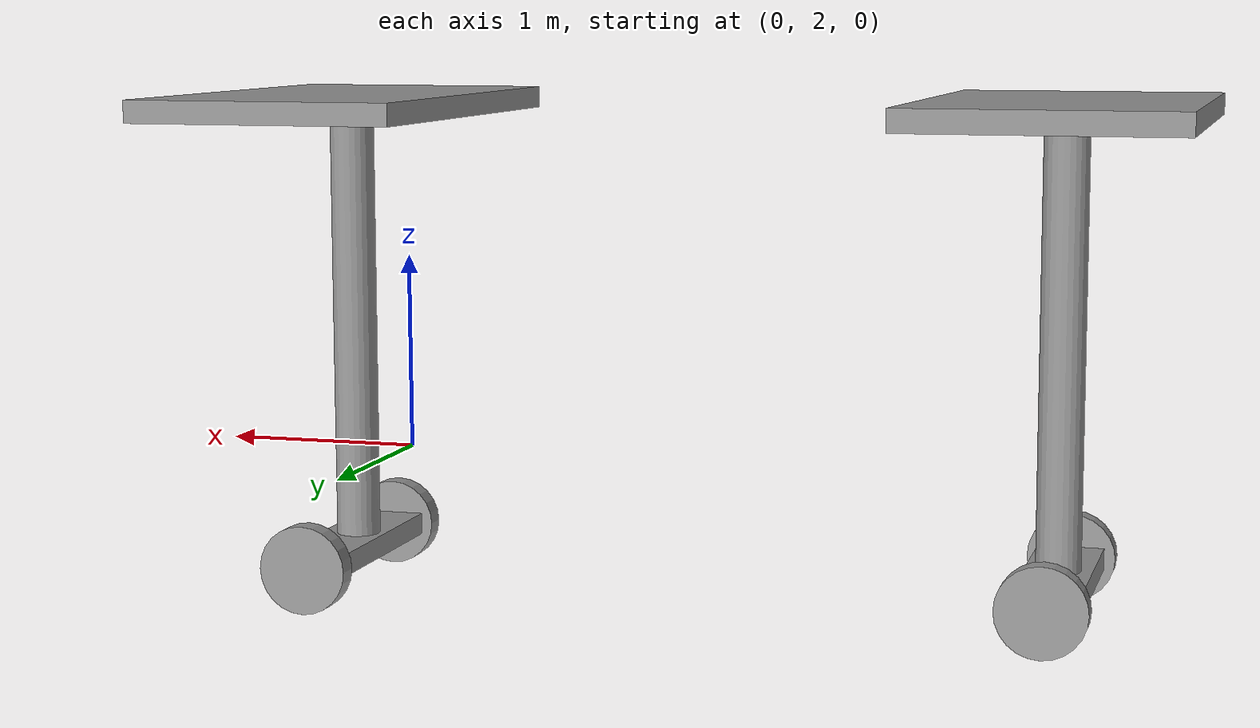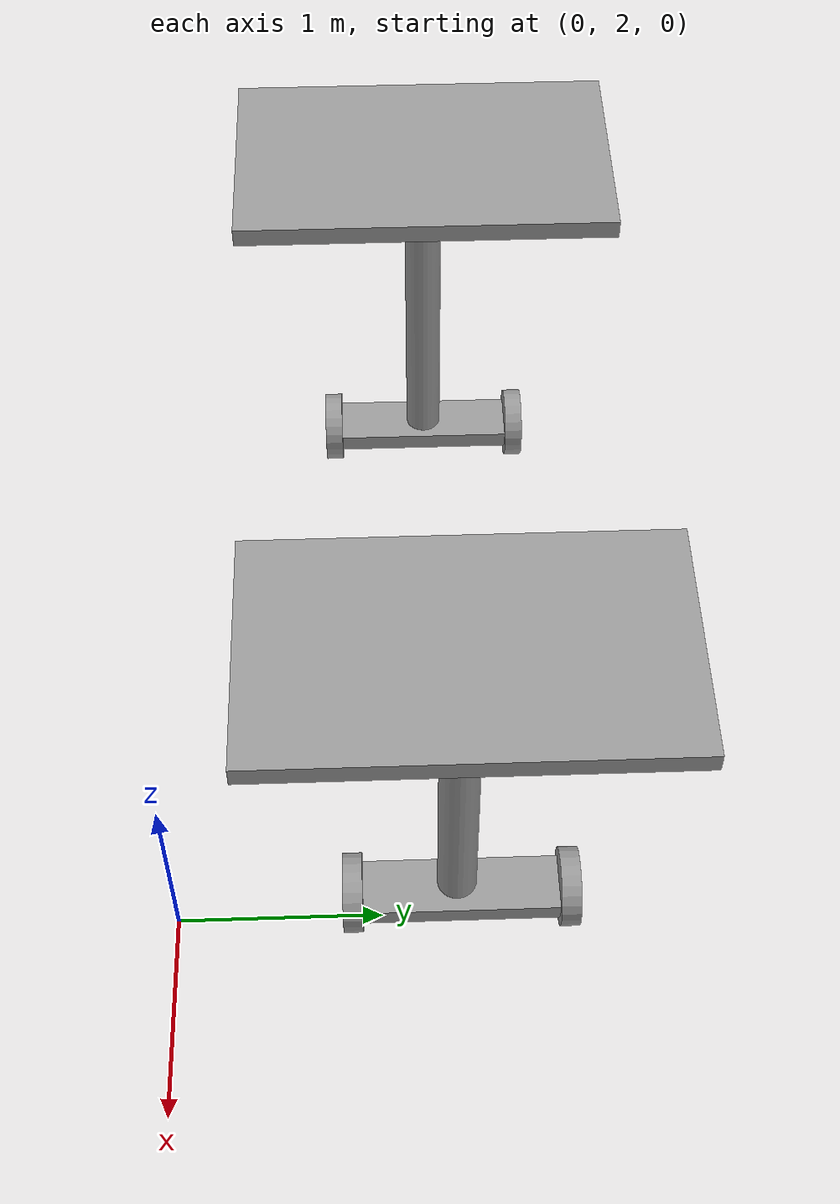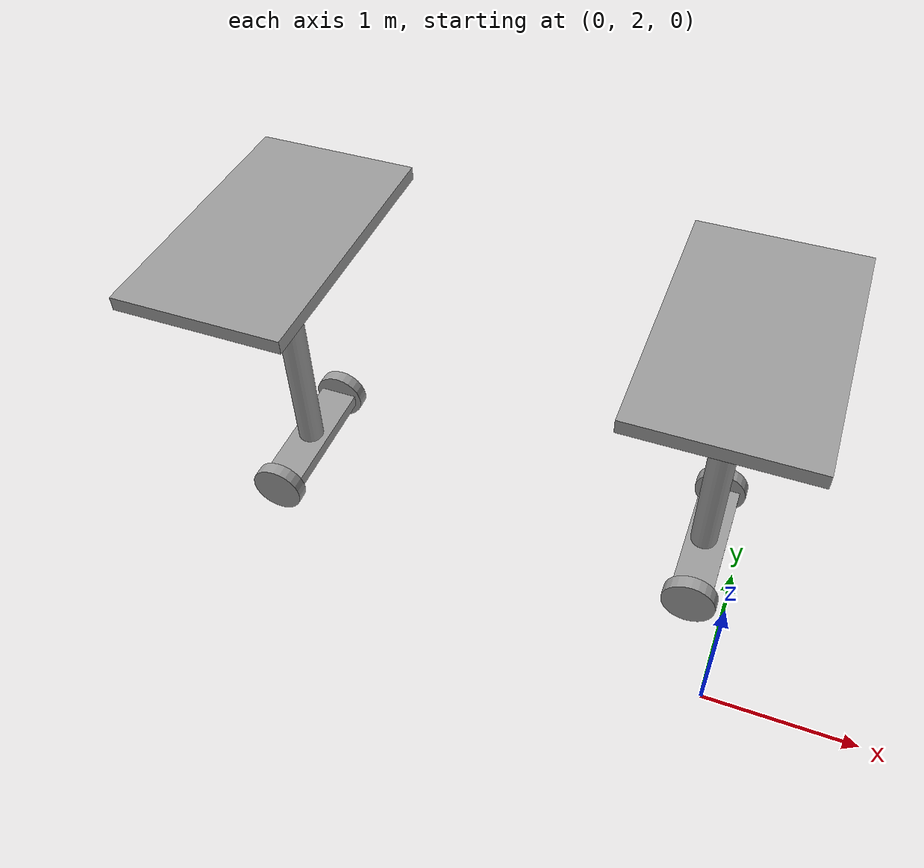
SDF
<?xml version='1.0'?>
<sdf version='1.6'>
  <model name='Robot_1'>
    <link name='link_0'>
      <pose frame=''>-0.247045 3.4007 -0.21 1.5707 -0 0</pose>
      <inertial>
        <mass>1</mass>
        <inertia>
          <ixx>0.166667</ixx>
          <ixy>0</ixy>
          <ixz>0</ixz>
          <iyy>0.166667</iyy>
          <iyz>0</iyz>
          <izz>0.166667</izz>
        </inertia>
        <pose frame=''>0 0 0 0 -0 0</pose>
      </inertial>
      <gravity>1</gravity>
      <self_collide>0</self_collide>
      <kinematic>0</kinematic>
      <visual name='visual'>
        <pose frame=''>0 0 0 0 -0 0</pose>
        <geometry>
          <box>
            <size>0.3 0.1 1</size>
          </box>
        </geometry>
        <material>
          <lighting>1</lighting>
          <script>
            <uri>file://media/materials/scripts/gazebo.material</uri>
            <name>Gazebo/Grey</name>
          </script>
          <shader type='pixel'>
            <normal_map>__default__</normal_map>
          </shader>
          <ambient>0.3 0.3 0.3 1</ambient>
          <diffuse>0.7 0.7 0.7 1</diffuse>
          <specular>0.01 0.01 0.01 1</specular>
          <emissive>0 0 0 1</emissive>
        </material>
        <transparency>0</transparency>
        <cast_shadows>1</cast_shadows>
      </visual>
      <collision name='collision'>
        <laser_retro>0</laser_retro>
        <max_contacts>10</max_contacts>
        <pose frame=''>0 0 0 0 -0 0</pose>
        <geometry>
          <box>
            <size>0.3 0.1 1</size>
          </box>
        </geometry>
        <surface>
          <friction>
            <ode>
              <mu>1</mu>
              <mu2>1</mu2>
              <fdir1>0 0 0</fdir1>
              <slip1>0</slip1>
              <slip2>0</slip2>
            </ode>
            <torsional>
              <coefficient>1</coefficient>
              <patch_radius>0</patch_radius>
              <surface_radius>0</surface_radius>
              <use_patch_radius>1</use_patch_radius>
              <ode>
                <slip>0</slip>
              </ode>
            </torsional>
          </friction>
          <bounce>
            <restitution_coefficient>0</restitution_coefficient>
            <threshold>1e+06</threshold>
          </bounce>
          <contact>
            <collide_without_contact>0</collide_without_contact>
            <collide_without_contact_bitmask>1</collide_without_contact_bitmask>
            <collide_bitmask>1</collide_bitmask>
            <ode>
              <soft_cfm>0</soft_cfm>
              <soft_erp>0.2</soft_erp>
              <kp>1e+13</kp>
              <kd>1</kd>
              <max_vel>0.01</max_vel>
              <min_depth>0</min_depth>
            </ode>
            <bullet>
              <split_impulse>1</split_impulse>
              <split_impulse_penetration_threshold>-0.01</split_impulse_penetration_threshold>
              <soft_cfm>0</soft_cfm>
              <soft_erp>0.2</soft_erp>
              <kp>1e+13</kp>
              <kd>1</kd>
            </bullet>
          </contact>
        </surface>
      </collision>
    </link>
    <link name='link_0_clone'>
      <pose frame=''>-3.52027 3.31962 -0.21 1.5707 -0 0</pose>
      <inertial>
        <mass>1</mass>
        <inertia>
          <ixx>0.166667</ixx>
          <ixy>0</ixy>
          <ixz>0</ixz>
          <iyy>0.166667</iyy>
          <iyz>0</iyz>
          <izz>0.166667</izz>
        </inertia>
        <pose frame=''>0 0 0 0 -0 0</pose>
      </inertial>
      <self_collide>0</self_collide>
      <kinematic>0</kinematic>
      <visual name='visual'>
        <pose frame=''>0 0 0 0 -0 0</pose>
        <geometry>
          <box>
            <size>0.3 0.1 1</size>
          </box>
        </geometry>
        <material>
          <lighting>1</lighting>
          <script>
            <uri>file://media/materials/scripts/gazebo.material</uri>
            <name>Gazebo/Grey</name>
          </script>
          <shader type='pixel'>
            <normal_map>__default__</normal_map>
          </shader>
          <ambient>0.3 0.3 0.3 1</ambient>
          <diffuse>0.7 0.7 0.7 1</diffuse>
          <specular>0.01 0.01 0.01 1</specular>
          <emissive>0 0 0 1</emissive>
        </material>
        <transparency>0</transparency>
        <cast_shadows>1</cast_shadows>
      </visual>
      <collision name='collision'>
        <laser_retro>0</laser_retro>
        <max_contacts>10</max_contacts>
        <pose frame=''>0 0 0 0 -0 0</pose>
        <geometry>
          <box>
            <size>0.3 0.1 1</size>
          </box>
        </geometry>
        <surface>
          <friction>
            <ode>
              <mu>1</mu>
              <mu2>1</mu2>
              <fdir1>0 0 0</fdir1>
              <slip1>0</slip1>
              <slip2>0</slip2>
            </ode>
            <torsional>
              <coefficient>1</coefficient>
              <patch_radius>0</patch_radius>
              <surface_radius>0</surface_radius>
              <use_patch_radius>1</use_patch_radius>
              <ode>
                <slip>0</slip>
              </ode>
            </torsional>
          </friction>
          <bounce>
            <restitution_coefficient>0</restitution_coefficient>
            <threshold>1e+06</threshold>
          </bounce>
          <contact>
            <collide_without_contact>0</collide_without_contact>
            <collide_without_contact_bitmask>1</collide_without_contact_bitmask>
            <collide_bitmask>1</collide_bitmask>
            <ode>
              <soft_cfm>0</soft_cfm>
              <soft_erp>0.2</soft_erp>
              <kp>1e+13</kp>
              <kd>1</kd>
              <max_vel>0.01</max_vel>
              <min_depth>0</min_depth>
            </ode>
            <bullet>
              <split_impulse>1</split_impulse>
              <split_impulse_penetration_threshold>-0.01</split_impulse_penetration_threshold>
              <soft_cfm>0</soft_cfm>
              <soft_erp>0.2</soft_erp>
              <kp>1e+13</kp>
              <kd>1</kd>
            </bullet>
          </contact>
        </surface>
      </collision>
    </link>
    <link name='link_1'>
      <pose frame=''>-0.247045 2.85068 -0.21 1.5707 -0 0</pose>
      <inertial>
        <mass>1</mass>
        <inertia>
          <ixx>0.145833</ixx>
          <ixy>0</ixy>
          <ixz>0</ixz>
          <iyy>0.145833</iyy>
          <iyz>0</iyz>
          <izz>0.125</izz>
        </inertia>
        <pose frame=''>0 0 0.2 0 -0 0</pose>
      </inertial>
      <gravity>1</gravity>
      <self_collide>0</self_collide>
      <kinematic>0</kinematic>
      <visual name='visual'>
        <pose frame=''>0 0 0 0 -0 0</pose>
        <geometry>
          <cylinder>
            <radius>0.2</radius>
            <length>0.1</length>
          </cylinder>
        </geometry>
        <material>
          <lighting>1</lighting>
          <script>
            <uri>file://media/materials/scripts/gazebo.material</uri>
            <name>Gazebo/Grey</name>
          </script>
          <shader type='pixel'>
            <normal_map>__default__</normal_map>
          </shader>
          <ambient>0.3 0.3 0.3 1</ambient>
          <diffuse>0.7 0.7 0.7 1</diffuse>
          <specular>0.01 0.01 0.01 1</specular>
          <emissive>0 0 0 1</emissive>
        </material>
        <transparency>0</transparency>
        <cast_shadows>1</cast_shadows>
      </visual>
      <collision name='collision'>
        <laser_retro>0</laser_retro>
        <max_contacts>10</max_contacts>
        <pose frame=''>0 0 0 0 -0 0</pose>
        <geometry>
          <cylinder>
            <radius>0.2</radius>
            <length>0.1</length>
          </cylinder>
        </geometry>
        <surface>
          <friction>
            <ode>
              <mu>1</mu>
              <mu2>1</mu2>
              <fdir1>0 0 0</fdir1>
              <slip1>0</slip1>
              <slip2>0</slip2>
            </ode>
            <torsional>
              <coefficient>1</coefficient>
              <patch_radius>0</patch_radius>
              <surface_radius>0</surface_radius>
              <use_patch_radius>1</use_patch_radius>
              <ode>
                <slip>0</slip>
              </ode>
            </torsional>
          </friction>
          <bounce>
            <restitution_coefficient>0</restitution_coefficient>
            <threshold>1e+06</threshold>
          </bounce>
          <contact>
            <collide_without_contact>0</collide_without_contact>
            <collide_without_contact_bitmask>1</collide_without_contact_bitmask>
            <collide_bitmask>1</collide_bitmask>
            <ode>
              <soft_cfm>0</soft_cfm>
              <soft_erp>0.2</soft_erp>
              <kp>1e+13</kp>
              <kd>1</kd>
              <max_vel>0.01</max_vel>
              <min_depth>0</min_depth>
            </ode>
            <bullet>
              <split_impulse>1</split_impulse>
              <split_impulse_penetration_threshold>-0.01</split_impulse_penetration_threshold>
              <soft_cfm>0</soft_cfm>
              <soft_erp>0.2</soft_erp>
              <kp>1e+13</kp>
              <kd>1</kd>
            </bullet>
          </contact>
        </surface>
      </collision>
    </link>
    <link name='link_1_clone'>
      <pose frame=''>-0.247045 3.95073 -0.21 1.5707 -0 0</pose>
      <inertial>
        <mass>1</mass>
        <inertia>
          <ixx>0.145833</ixx>
          <ixy>0</ixy>
          <ixz>0</ixz>
          <iyy>0.145833</iyy>
          <iyz>0</iyz>
          <izz>0.125</izz>
        </inertia>
        <pose frame=''>0 0 0.2 0 -0 0</pose>
      </inertial>
      <self_collide>0</self_collide>
      <kinematic>0</kinematic>
      <visual name='visual'>
        <pose frame=''>0 0 0 0 -0 0</pose>
        <geometry>
          <cylinder>
            <radius>0.2</radius>
            <length>0.1</length>
          </cylinder>
        </geometry>
        <material>
          <lighting>1</lighting>
          <script>
            <uri>file://media/materials/scripts/gazebo.material</uri>
            <name>Gazebo/Grey</name>
          </script>
          <shader type='pixel'>
            <normal_map>__default__</normal_map>
          </shader>
          <ambient>0.3 0.3 0.3 1</ambient>
          <diffuse>0.7 0.7 0.7 1</diffuse>
          <specular>0.01 0.01 0.01 1</specular>
          <emissive>0 0 0 1</emissive>
        </material>
        <transparency>0</transparency>
        <cast_shadows>1</cast_shadows>
      </visual>
      <collision name='collision'>
        <laser_retro>0</laser_retro>
        <max_contacts>10</max_contacts>
        <pose frame=''>0 0 0 0 -0 0</pose>
        <geometry>
          <cylinder>
            <radius>0.2</radius>
            <length>0.1</length>
          </cylinder>
        </geometry>
        <surface>
          <friction>
            <ode>
              <mu>1</mu>
              <mu2>1</mu2>
              <fdir1>0 0 0</fdir1>
              <slip1>0</slip1>
              <slip2>0</slip2>
            </ode>
            <torsional>
              <coefficient>1</coefficient>
              <patch_radius>0</patch_radius>
              <surface_radius>0</surface_radius>
              <use_patch_radius>1</use_patch_radius>
              <ode>
                <slip>0</slip>
              </ode>
            </torsional>
          </friction>
          <bounce>
            <restitution_coefficient>0</restitution_coefficient>
            <threshold>1e+06</threshold>
          </bounce>
          <contact>
            <collide_without_contact>0</collide_without_contact>
            <collide_without_contact_bitmask>1</collide_without_contact_bitmask>
            <collide_bitmask>1</collide_bitmask>
            <ode>
              <soft_cfm>0</soft_cfm>
              <soft_erp>0.2</soft_erp>
              <kp>1e+13</kp>
              <kd>1</kd>
              <max_vel>0.01</max_vel>
              <min_depth>0</min_depth>
            </ode>
            <bullet>
              <split_impulse>1</split_impulse>
              <split_impulse_penetration_threshold>-0.01</split_impulse_penetration_threshold>
              <soft_cfm>0</soft_cfm>
              <soft_erp>0.2</soft_erp>
              <kp>1e+13</kp>
              <kd>1</kd>
            </bullet>
          </contact>
        </surface>
      </collision>
    </link>
    <link name='link_1_clone_0'>
      <pose frame=''>-3.52027 2.76959 -0.21 1.5707 -0 0</pose>
      <inertial>
        <mass>1</mass>
        <inertia>
          <ixx>0.145833</ixx>
          <ixy>0</ixy>
          <ixz>0</ixz>
          <iyy>0.145833</iyy>
          <iyz>0</iyz>
          <izz>0.125</izz>
        </inertia>
        <pose frame=''>0 0 0.2 0 -0 0</pose>
      </inertial>
      <self_collide>0</self_collide>
      <kinematic>0</kinematic>
      <visual name='visual'>
        <pose frame=''>0 0 0 0 -0 0</pose>
        <geometry>
          <cylinder>
            <radius>0.2</radius>
            <length>0.1</length>
          </cylinder>
        </geometry>
        <material>
          <lighting>1</lighting>
          <script>
            <uri>file://media/materials/scripts/gazebo.material</uri>
            <name>Gazebo/Grey</name>
          </script>
          <shader type='pixel'>
            <normal_map>__default__</normal_map>
          </shader>
          <ambient>0.3 0.3 0.3 1</ambient>
          <diffuse>0.7 0.7 0.7 1</diffuse>
          <specular>0.01 0.01 0.01 1</specular>
          <emissive>0 0 0 1</emissive>
        </material>
        <transparency>0</transparency>
        <cast_shadows>1</cast_shadows>
      </visual>
      <collision name='collision'>
        <laser_retro>0</laser_retro>
        <max_contacts>10</max_contacts>
        <pose frame=''>0 0 0 0 -0 0</pose>
        <geometry>
          <cylinder>
            <radius>0.2</radius>
            <length>0.1</length>
          </cylinder>
        </geometry>
        <surface>
          <friction>
            <ode>
              <mu>1</mu>
              <mu2>1</mu2>
              <fdir1>0 0 0</fdir1>
              <slip1>0</slip1>
              <slip2>0</slip2>
            </ode>
            <torsional>
              <coefficient>1</coefficient>
              <patch_radius>0</patch_radius>
              <surface_radius>0</surface_radius>
              <use_patch_radius>1</use_patch_radius>
              <ode>
                <slip>0</slip>
              </ode>
            </torsional>
          </friction>
          <bounce>
            <restitution_coefficient>0</restitution_coefficient>
            <threshold>1e+06</threshold>
          </bounce>
          <contact>
            <collide_without_contact>0</collide_without_contact>
            <collide_without_contact_bitmask>1</collide_without_contact_bitmask>
            <collide_bitmask>1</collide_bitmask>
            <ode>
              <soft_cfm>0</soft_cfm>
              <soft_erp>0.2</soft_erp>
              <kp>1e+13</kp>
              <kd>1</kd>
              <max_vel>0.01</max_vel>
              <min_depth>0</min_depth>
            </ode>
            <bullet>
              <split_impulse>1</split_impulse>
              <split_impulse_penetration_threshold>-0.01</split_impulse_penetration_threshold>
              <soft_cfm>0</soft_cfm>
              <soft_erp>0.2</soft_erp>
              <kp>1e+13</kp>
              <kd>1</kd>
            </bullet>
          </contact>
        </surface>
      </collision>
    </link>
    <link name='link_1_clone_0_clone'>
      <pose frame=''>-3.52027 3.86964 -0.21 1.5707 -0 0</pose>
      <inertial>
        <mass>1</mass>
        <inertia>
          <ixx>0.145833</ixx>
          <ixy>0</ixy>
          <ixz>0</ixz>
          <iyy>0.145833</iyy>
          <iyz>0</iyz>
          <izz>0.125</izz>
        </inertia>
        <pose frame=''>0 0 0.2 0 -0 0</pose>
      </inertial>
      <self_collide>0</self_collide>
      <kinematic>0</kinematic>
      <visual name='visual'>
        <pose frame=''>0 0 0 0 -0 0</pose>
        <geometry>
          <cylinder>
            <radius>0.2</radius>
            <length>0.1</length>
          </cylinder>
        </geometry>
        <material>
          <lighting>1</lighting>
          <script>
            <uri>file://media/materials/scripts/gazebo.material</uri>
            <name>Gazebo/Grey</name>
          </script>
          <shader type='pixel'>
            <normal_map>__default__</normal_map>
          </shader>
          <ambient>0.3 0.3 0.3 1</ambient>
          <diffuse>0.7 0.7 0.7 1</diffuse>
          <specular>0.01 0.01 0.01 1</specular>
          <emissive>0 0 0 1</emissive>
        </material>
        <transparency>0</transparency>
        <cast_shadows>1</cast_shadows>
      </visual>
      <collision name='collision'>
        <laser_retro>0</laser_retro>
        <max_contacts>10</max_contacts>
        <pose frame=''>0 0 0 0 -0 0</pose>
        <geometry>
          <cylinder>
            <radius>0.2</radius>
            <length>0.1</length>
          </cylinder>
        </geometry>
        <surface>
          <friction>
            <ode>
              <mu>1</mu>
              <mu2>1</mu2>
              <fdir1>0 0 0</fdir1>
              <slip1>0</slip1>
              <slip2>0</slip2>
            </ode>
            <torsional>
              <coefficient>1</coefficient>
              <patch_radius>0</patch_radius>
              <surface_radius>0</surface_radius>
              <use_patch_radius>1</use_patch_radius>
              <ode>
                <slip>0</slip>
              </ode>
            </torsional>
          </friction>
          <bounce>
            <restitution_coefficient>0</restitution_coefficient>
            <threshold>1e+06</threshold>
          </bounce>
          <contact>
            <collide_without_contact>0</collide_without_contact>
            <collide_without_contact_bitmask>1</collide_without_contact_bitmask>
            <collide_bitmask>1</collide_bitmask>
            <ode>
              <soft_cfm>0</soft_cfm>
              <soft_erp>0.2</soft_erp>
              <kp>1e+13</kp>
              <kd>1</kd>
              <max_vel>0.01</max_vel>
              <min_depth>0</min_depth>
            </ode>
            <bullet>
              <split_impulse>1</split_impulse>
              <split_impulse_penetration_threshold>-0.01</split_impulse_penetration_threshold>
              <soft_cfm>0</soft_cfm>
              <soft_erp>0.2</soft_erp>
              <kp>1e+13</kp>
              <kd>1</kd>
            </bullet>
          </contact>
        </surface>
      </collision>
    </link>
    <link name='link_2'>
      <pose frame=''>-0.267045 3.38071 -0.21 0 -0 0</pose>
      <inertial>
        <mass>1</mass>
        <inertia>
          <ixx>0.145833</ixx>
          <ixy>0</ixy>
          <ixz>0</ixz>
          <iyy>0.145833</iyy>
          <iyz>0</iyz>
          <izz>0.125</izz>
        </inertia>
        <pose frame=''>0 0 0 0 -0 0</pose>
      </inertial>
      <gravity>1</gravity>
      <self_collide>0</self_collide>
      <kinematic>0</kinematic>
      <visual name='visual'>
        <pose frame=''>0 0 1 0 -0 0</pose>
        <geometry>
          <cylinder>
            <radius>0.1</radius>
            <length>2</length>
          </cylinder>
        </geometry>
        <material>
          <lighting>1</lighting>
          <script>
            <uri>file://media/materials/scripts/gazebo.material</uri>
            <name>Gazebo/Grey</name>
          </script>
          <shader type='pixel'>
            <normal_map>__default__</normal_map>
          </shader>
          <ambient>0.3 0.3 0.3 1</ambient>
          <diffuse>0.7 0.7 0.7 1</diffuse>
          <specular>0.01 0.01 0.01 1</specular>
          <emissive>0 0 0 1</emissive>
        </material>
        <transparency>0</transparency>
        <cast_shadows>1</cast_shadows>
      </visual>
      <collision name='collision'>
        <laser_retro>0</laser_retro>
        <max_contacts>10</max_contacts>
        <pose frame=''>0 0 1 0 -0 0</pose>
        <geometry>
          <cylinder>
            <radius>0.1</radius>
            <length>2</length>
          </cylinder>
        </geometry>
        <surface>
          <friction>
            <ode>
              <mu>1</mu>
              <mu2>1</mu2>
              <fdir1>0 0 0</fdir1>
              <slip1>0</slip1>
              <slip2>0</slip2>
            </ode>
            <torsional>
              <coefficient>1</coefficient>
              <patch_radius>0</patch_radius>
              <surface_radius>0</surface_radius>
              <use_patch_radius>1</use_patch_radius>
              <ode>
                <slip>0</slip>
              </ode>
            </torsional>
          </friction>
          <bounce>
            <restitution_coefficient>0</restitution_coefficient>
            <threshold>1e+06</threshold>
          </bounce>
          <contact>
            <collide_without_contact>0</collide_without_contact>
            <collide_without_contact_bitmask>1</collide_without_contact_bitmask>
            <collide_bitmask>1</collide_bitmask>
            <ode>
              <soft_cfm>0</soft_cfm>
              <soft_erp>0.2</soft_erp>
              <kp>1e+13</kp>
              <kd>1</kd>
              <max_vel>0.01</max_vel>
              <min_depth>0</min_depth>
            </ode>
            <bullet>
              <split_impulse>1</split_impulse>
              <split_impulse_penetration_threshold>-0.01</split_impulse_penetration_threshold>
              <soft_cfm>0</soft_cfm>
              <soft_erp>0.2</soft_erp>
              <kp>1e+13</kp>
              <kd>1</kd>
            </bullet>
          </contact>
        </surface>
      </collision>
    </link>
    <link name='link_2_clone'>
      <pose frame=''>-3.52027 3.31962 -0.21 0 -0 0</pose>
      <inertial>
        <mass>1</mass>
        <inertia>
          <ixx>0.145833</ixx>
          <ixy>0</ixy>
          <ixz>0</ixz>
          <iyy>0.145833</iyy>
          <iyz>0</iyz>
          <izz>0.125</izz>
        </inertia>
        <pose frame=''>0 0 0 0 -0 0</pose>
      </inertial>
      <self_collide>0</self_collide>
      <kinematic>0</kinematic>
      <visual name='visual'>
        <pose frame=''>0 0 1 0 -0 0</pose>
        <geometry>
          <cylinder>
            <radius>0.1</radius>
            <length>2</length>
          </cylinder>
        </geometry>
        <material>
          <lighting>1</lighting>
          <script>
            <uri>file://media/materials/scripts/gazebo.material</uri>
            <name>Gazebo/Grey</name>
          </script>
          <shader type='pixel'>
            <normal_map>__default__</normal_map>
          </shader>
          <ambient>0.3 0.3 0.3 1</ambient>
          <diffuse>0.7 0.7 0.7 1</diffuse>
          <specular>0.01 0.01 0.01 1</specular>
          <emissive>0 0 0 1</emissive>
        </material>
        <transparency>0</transparency>
        <cast_shadows>1</cast_shadows>
      </visual>
      <collision name='collision'>
        <laser_retro>0</laser_retro>
        <max_contacts>10</max_contacts>
        <pose frame=''>0 0 1 0 -0 0</pose>
        <geometry>
          <cylinder>
            <radius>0.1</radius>
            <length>2</length>
          </cylinder>
        </geometry>
        <surface>
          <friction>
            <ode>
              <mu>1</mu>
              <mu2>1</mu2>
              <fdir1>0 0 0</fdir1>
              <slip1>0</slip1>
              <slip2>0</slip2>
            </ode>
            <torsional>
              <coefficient>1</coefficient>
              <patch_radius>0</patch_radius>
              <surface_radius>0</surface_radius>
              <use_patch_radius>1</use_patch_radius>
              <ode>
                <slip>0</slip>
              </ode>
            </torsional>
          </friction>
          <bounce>
            <restitution_coefficient>0</restitution_coefficient>
            <threshold>1e+06</threshold>
          </bounce>
          <contact>
            <collide_without_contact>0</collide_without_contact>
            <collide_without_contact_bitmask>1</collide_without_contact_bitmask>
            <collide_bitmask>1</collide_bitmask>
            <ode>
              <soft_cfm>0</soft_cfm>
              <soft_erp>0.2</soft_erp>
              <kp>1e+13</kp>
              <kd>1</kd>
              <max_vel>0.01</max_vel>
              <min_depth>0</min_depth>
            </ode>
            <bullet>
              <split_impulse>1</split_impulse>
              <split_impulse_penetration_threshold>-0.01</split_impulse_penetration_threshold>
              <soft_cfm>0</soft_cfm>
              <soft_erp>0.2</soft_erp>
              <kp>1e+13</kp>
              <kd>1</kd>
            </bullet>
          </contact>
        </surface>
      </collision>
    </link>
    <link name='link_4'>
      <pose frame=''>-0.247045 3.40071 1.84 0 -0 0</pose>
      <inertial>
        <mass>1</mass>
        <inertia>
          <ixx>0.166667</ixx>
          <ixy>0</ixy>
          <ixz>0</ixz>
          <iyy>0.166667</iyy>
          <iyz>0</iyz>
          <izz>0.166667</izz>
        </inertia>
        <pose frame=''>0 0 0 0 -0 0</pose>
      </inertial>
      <gravity>1</gravity>
      <self_collide>0</self_collide>
      <kinematic>0</kinematic>
      <visual name='visual'>
        <pose frame=''>0 0 0 0 -0 0</pose>
        <geometry>
          <box>
            <size>1.2 2 0.1</size>
          </box>
        </geometry>
        <material>
          <lighting>1</lighting>
          <script>
            <uri>file://media/materials/scripts/gazebo.material</uri>
            <name>Gazebo/Grey</name>
          </script>
          <shader type='pixel'>
            <normal_map>__default__</normal_map>
          </shader>
          <ambient>0.3 0.3 0.3 1</ambient>
          <diffuse>0.7 0.7 0.7 1</diffuse>
          <specular>0.01 0.01 0.01 1</specular>
          <emissive>0 0 0 1</emissive>
        </material>
        <transparency>0</transparency>
        <cast_shadows>1</cast_shadows>
      </visual>
      <collision name='collision'>
        <laser_retro>0</laser_retro>
        <max_contacts>10</max_contacts>
        <pose frame=''>0 0 0 0 -0 0</pose>
        <geometry>
          <box>
            <size>1.2 2 0.1</size>
          </box>
        </geometry>
        <surface>
          <friction>
            <ode>
              <mu>1</mu>
              <mu2>1</mu2>
              <fdir1>0 0 0</fdir1>
              <slip1>0</slip1>
              <slip2>0</slip2>
            </ode>
            <torsional>
              <coefficient>1</coefficient>
              <patch_radius>0</patch_radius>
              <surface_radius>0</surface_radius>
              <use_patch_radius>1</use_patch_radius>
              <ode>
                <slip>0</slip>
              </ode>
            </torsional>
          </friction>
          <bounce>
            <restitution_coefficient>0</restitution_coefficient>
            <threshold>1e+06</threshold>
          </bounce>
          <contact>
            <collide_without_contact>0</collide_without_contact>
            <collide_without_contact_bitmask>1</collide_without_contact_bitmask>
            <collide_bitmask>1</collide_bitmask>
            <ode>
              <soft_cfm>0</soft_cfm>
              <soft_erp>0.2</soft_erp>
              <kp>1e+13</kp>
              <kd>1</kd>
              <max_vel>0.01</max_vel>
              <min_depth>0</min_depth>
            </ode>
            <bullet>
              <split_impulse>1</split_impulse>
              <split_impulse_penetration_threshold>-0.01</split_impulse_penetration_threshold>
              <soft_cfm>0</soft_cfm>
              <soft_erp>0.2</soft_erp>
              <kp>1e+13</kp>
              <kd>1</kd>
            </bullet>
          </contact>
        </surface>
      </collision>
    </link>
    <link name='link_4_clone'>
      <pose frame=''>-3.52027 3.31962 1.84 0 -0 0</pose>
      <inertial>
        <mass>1</mass>
        <inertia>
          <ixx>0.166667</ixx>
          <ixy>0</ixy>
          <ixz>0</ixz>
          <iyy>0.166667</iyy>
          <iyz>0</iyz>
          <izz>0.166667</izz>
        </inertia>
        <pose frame=''>0 0 0 0 -0 0</pose>
      </inertial>
      <self_collide>0</self_collide>
      <kinematic>0</kinematic>
      <visual name='visual'>
        <pose frame=''>0 0 0 0 -0 0</pose>
        <geometry>
          <box>
            <size>1.2 2 0.1</size>
          </box>
        </geometry>
        <material>
          <lighting>1</lighting>
          <script>
            <uri>file://media/materials/scripts/gazebo.material</uri>
            <name>Gazebo/Grey</name>
          </script>
          <shader type='pixel'>
            <normal_map>__default__</normal_map>
          </shader>
          <ambient>0.3 0.3 0.3 1</ambient>
          <diffuse>0.7 0.7 0.7 1</diffuse>
          <specular>0.01 0.01 0.01 1</specular>
          <emissive>0 0 0 1</emissive>
        </material>
        <transparency>0</transparency>
        <cast_shadows>1</cast_shadows>
      </visual>
      <collision name='collision'>
        <laser_retro>0</laser_retro>
        <max_contacts>10</max_contacts>
        <pose frame=''>0 0 0 0 -0 0</pose>
        <geometry>
          <box>
            <size>1.2 2 0.1</size>
          </box>
        </geometry>
        <surface>
          <friction>
            <ode>
              <mu>1</mu>
              <mu2>1</mu2>
              <fdir1>0 0 0</fdir1>
              <slip1>0</slip1>
              <slip2>0</slip2>
            </ode>
            <torsional>
              <coefficient>1</coefficient>
              <patch_radius>0</patch_radius>
              <surface_radius>0</surface_radius>
              <use_patch_radius>1</use_patch_radius>
              <ode>
                <slip>0</slip>
              </ode>
            </torsional>
          </friction>
          <bounce>
            <restitution_coefficient>0</restitution_coefficient>
            <threshold>1e+06</threshold>
          </bounce>
          <contact>
            <collide_without_contact>0</collide_without_contact>
            <collide_without_contact_bitmask>1</collide_without_contact_bitmask>
            <collide_bitmask>1</collide_bitmask>
            <ode>
              <soft_cfm>0</soft_cfm>
              <soft_erp>0.2</soft_erp>
              <kp>1e+13</kp>
              <kd>1</kd>
              <max_vel>0.01</max_vel>
              <min_depth>0</min_depth>
            </ode>
            <bullet>
              <split_impulse>1</split_impulse>
              <split_impulse_penetration_threshold>-0.01</split_impulse_penetration_threshold>
              <soft_cfm>0</soft_cfm>
              <soft_erp>0.2</soft_erp>
              <kp>1e+13</kp>
              <kd>1</kd>
            </bullet>
          </contact>
        </surface>
      </collision>
    </link>
    <joint name='link_0_JOINT_0' type='revolute'>
      <parent>link_0</parent>
      <child>link_1</child>
      <pose frame=''>0 0 0 0 -0 0</pose>
      <axis>
        <xyz>0 0 1</xyz>
        <use_parent_model_frame>0</use_parent_model_frame>
        <limit>
          <lower>-1.79769e+308</lower>
          <upper>1.79769e+308</upper>
          <effort>-1</effort>
          <velocity>-1</velocity>
        </limit>
        <dynamics>
          <spring_reference>0</spring_reference>
          <spring_stiffness>0</spring_stiffness>
          <damping>0</damping>
        </dynamics>
      </axis>
      <physics>
        <ode>
          <limit>
            <cfm>0</cfm>
            <erp>0.2</erp>
          </limit>
          <suspension>
            <cfm>0</cfm>
            <erp>0.2</erp>
          </suspension>
        </ode>
      </physics>
    </joint>
    <joint name='link_0_JOINT_1' type='revolute'>
      <parent>link_0</parent>
      <child>link_1_clone</child>
      <pose frame=''>0 0 0 0 -0 0</pose>
      <axis>
        <xyz>0 0 1</xyz>
        <use_parent_model_frame>0</use_parent_model_frame>
        <limit>
          <lower>-1.79769e+308</lower>
          <upper>1.79769e+308</upper>
          <effort>-1</effort>
          <velocity>-1</velocity>
        </limit>
        <dynamics>
          <spring_reference>0</spring_reference>
          <spring_stiffness>0</spring_stiffness>
          <damping>0</damping>
        </dynamics>
      </axis>
      <physics>
        <ode>
          <limit>
            <cfm>0</cfm>
            <erp>0.2</erp>
          </limit>
          <suspension>
            <cfm>0</cfm>
            <erp>0.2</erp>
          </suspension>
        </ode>
      </physics>
    </joint>
    <joint name='link_0_JOINT_2' type='fixed'>
      <parent>link_0</parent>
      <child>link_2</child>
      <pose frame=''>0 0 0 0 -0 0</pose>
      <physics>
        <ode>
          <limit>
            <cfm>0</cfm>
            <erp>0.2</erp>
          </limit>
          <suspension>
            <cfm>0</cfm>
            <erp>0.2</erp>
          </suspension>
        </ode>
      </physics>
    </joint>
    <joint name='link_0_clone_JOINT_4' type='revolute'>
      <parent>link_0_clone</parent>
      <child>link_1_clone_0</child>
      <pose frame=''>0 0 0 0 -0 0</pose>
      <axis>
        <xyz>0 0 1</xyz>
        <use_parent_model_frame>0</use_parent_model_frame>
        <limit>
          <lower>-1.79769e+308</lower>
          <upper>1.79769e+308</upper>
          <effort>-1</effort>
          <velocity>-1</velocity>
        </limit>
        <dynamics>
          <spring_reference>0</spring_reference>
          <spring_stiffness>0</spring_stiffness>
          <damping>0</damping>
        </dynamics>
      </axis>
      <physics>
        <ode>
          <limit>
            <cfm>0</cfm>
            <erp>0.2</erp>
          </limit>
          <suspension>
            <cfm>0</cfm>
            <erp>0.2</erp>
          </suspension>
        </ode>
      </physics>
    </joint>
    <joint name='link_0_clone_JOINT_5' type='revolute'>
      <parent>link_0_clone</parent>
      <child>link_1_clone_0_clone</child>
      <pose frame=''>0 0 0 0 -0 0</pose>
      <axis>
        <xyz>1 0 0</xyz>
        <use_parent_model_frame>0</use_parent_model_frame>
        <limit>
          <lower>-1.79769e+308</lower>
          <upper>1.79769e+308</upper>
          <effort>-1</effort>
          <velocity>-1</velocity>
        </limit>
        <dynamics>
          <spring_reference>0</spring_reference>
          <spring_stiffness>0</spring_stiffness>
          <damping>0</damping>
        </dynamics>
      </axis>
      <physics>
        <ode>
          <limit>
            <cfm>0</cfm>
            <erp>0.2</erp>
          </limit>
          <suspension>
            <cfm>0</cfm>
            <erp>0.2</erp>
          </suspension>
        </ode>
      </physics>
    </joint>
    <joint name='link_0_clone_JOINT_6' type='fixed'>
      <parent>link_0_clone</parent>
      <child>link_2_clone</child>
      <pose frame=''>0 0 0 0 -0 0</pose>
      <physics>
        <ode>
          <limit>
            <cfm>0</cfm>
            <erp>0.2</erp>
          </limit>
          <suspension>
            <cfm>0</cfm>
            <erp>0.2</erp>
          </suspension>
        </ode>
      </physics>
    </joint>
    <joint name='link_2_JOINT_3' type='fixed'>
      <parent>link_2</parent>
      <child>link_4</child>
      <pose frame=''>0 0 0 0 -0 0</pose>
      <physics>
        <ode>
          <limit>
            <cfm>0</cfm>
            <erp>0.2</erp>
          </limit>
          <suspension>
            <cfm>0</cfm>
            <erp>0.2</erp>
          </suspension>
        </ode>
      </physics>
    </joint>
    <joint name='link_2_clone_JOINT_8' type='fixed'>
      <parent>link_2_clone</parent>
      <child>link_4_clone</child>
      <pose frame=''>0 0 0 0 -0 0</pose>
      <physics>
        <ode>
          <limit>
            <cfm>0</cfm>
            <erp>0.2</erp>
          </limit>
          <suspension>
            <cfm>0</cfm>
            <erp>0.2</erp>
          </suspension>
        </ode>
      </physics>
    </joint>
    <static>0</static>
    <allow_auto_disable>1</allow_auto_disable>
  </model>
</sdf>
